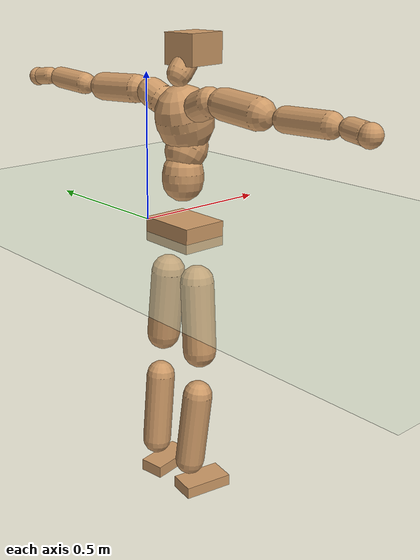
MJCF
<mujoco model="humanoid">
  <compiler coordinate="local" angle="radian"/>
  <default>
    <joint damping="0.0" armature="0.01" stiffness="0.0" limited="true"/>
    <geom conaffinity="1" condim="3" contype="7" margin="0.001" rgba="0.8 0.6 .4 1"/>
  </default>
  <asset>
    <texture type="skybox" builtin="gradient" rgb1=".4 .5 .6" rgb2="0 0 0" width="100" height="100"/>
    <texture builtin="flat" height="1278" mark="cross" markrgb="1 1 1" name="texgeom" random="0.01" rgb1="0.8 0.6 0.4" rgb2="0.8 0.6 0.4" type="cube" width="127"/>
    <texture builtin="checker" height="100" name="texplane" rgb1="0 0 0" rgb2="0.8 0.8 0.8" type="2d" width="100"/>
    <material name="MatPlane" reflectance="0.5" shininess="1" specular="1" texrepeat="60 60" texture="texplane"/>
    <material name="geom" texture="texgeom" texuniform="true"/>
  </asset>
  <worldbody>
    <light cutoff="100" diffuse="1 1 1" dir="-0 0 -1.3" directional="true" exponent="1" pos="0 0 1.3" specular=".1 .1 .1"/>
    <geom conaffinity="1" condim="3" name="floor" pos="0 0 0" rgba="0.8 0.9 0.8 1" size="100 100 .2" type="plane" material="MatPlane"/>
    <body name="Pelvis" pos="-0.0011 -0.2003 0.0205">
      <freejoint name="Pelvis"/>
      <geom type="box" contype="1" conaffinity="1" density="500" pos="-0.0063 0.0000 -0.0132" size="0.0785 0.0994 0.0409" quat="1.0000 0.0000 0.0000 -0.0017" name="Pelvis"/>
      <body name="L_Hip" pos="-0.0132 0.0644 -0.0924">
        <joint name="L_Hip_x" type="hinge" pos="0 0 0" axis="1 0 0" stiffness="800" damping="80" armature="0.02" range="-180.0000 180.0000"/>
        <joint name="L_Hip_y" type="hinge" pos="0 0 0" axis="0 1 0" stiffness="800" damping="80" armature="0.02" range="-180.0000 180.0000"/>
        <joint name="L_Hip_z" type="hinge" pos="0 0 0" axis="0 0 1" stiffness="800" damping="80" armature="0.02" range="-180.0000 180.0000"/>
        <geom type="capsule" contype="1" conaffinity="1" density="500" fromto="-0.0017 0.0068 -0.0782 -0.0066 0.0272 -0.3129" size="0.057" name="L_Hip"/>
        <body name="L_Knee" pos="-0.0083 0.034 -0.3911">
          <joint name="L_Knee_x" type="hinge" pos="0 0 0" axis="1 0 0" stiffness="800" damping="80" armature="0.02" range="-180.0000 180.0000"/>
          <joint name="L_Knee_y" type="hinge" pos="0 0 0" axis="0 1 0" stiffness="800" damping="80" armature="0.02" range="-180.0000 180.0000"/>
          <joint name="L_Knee_z" type="hinge" pos="0 0 0" axis="0 0 1" stiffness="800" damping="80" armature="0.02" range="-180.0000 180.0000"/>
          <geom type="capsule" contype="1" conaffinity="1" density="500" fromto="-0.0086 -0.0026 -0.0830 -0.0342 -0.0103 -0.3319" size="0.0499" name="L_Knee"/>
          <body name="L_Ankle" pos="-0.0428 -0.0128 -0.4149">
            <joint name="L_Ankle_x" type="hinge" pos="0 0 0" axis="1 0 0" stiffness="800" damping="80" armature="0.02" range="-180.0000 180.0000"/>
            <joint name="L_Ankle_y" type="hinge" pos="0 0 0" axis="0 1 0" stiffness="800" damping="80" armature="0.02" range="-180.0000 180.0000"/>
            <joint name="L_Ankle_z" type="hinge" pos="0 0 0" axis="0 0 1" stiffness="800" damping="80" armature="0.02" range="-180.0000 180.0000"/>
            <geom type="box" contype="1" conaffinity="1" density="500" pos="0.0589 0.0093 -0.0285" size="0.0842 0.0431 0.021" quat="0.9969 0.0000 0.0000 0.0785" name="L_Ankle"/>
            <body name="L_Toe" pos="0.1179 0.0187 -0.0569">
              <joint name="L_Toe_x" type="hinge" pos="0 0 0" axis="1 0 0" stiffness="500" damping="50" armature="0.02" range="-180.0000 180.0000"/>
              <joint name="L_Toe_y" type="hinge" pos="0 0 0" axis="0 1 0" stiffness="500" damping="50" armature="0.02" range="-180.0000 180.0000"/>
              <joint name="L_Toe_z" type="hinge" pos="0 0 0" axis="0 0 1" stiffness="500" damping="50" armature="0.02" range="-180.0000 180.0000"/>
              <geom type="box" contype="1" conaffinity="1" density="500" pos="0.0000 0.0000 0.0270" size="0.0009 0.0022 0.001" quat="0.9964 0.0000 0.0000 0.0853" name="L_Toe"/>
            </body>
          </body>
        </body>
      </body>
      <body name="R_Hip" pos="-0.0088 -0.0619 -0.0924">
        <joint name="R_Hip_x" type="hinge" pos="0 0 0" axis="1 0 0" stiffness="800" damping="80" armature="0.02" range="-180.0000 180.0000"/>
        <joint name="R_Hip_y" type="hinge" pos="0 0 0" axis="0 1 0" stiffness="800" damping="80" armature="0.02" range="-180.0000 180.0000"/>
        <joint name="R_Hip_z" type="hinge" pos="0 0 0" axis="0 0 1" stiffness="800" damping="80" armature="0.02" range="-180.0000 180.0000"/>
        <geom type="capsule" contype="1" conaffinity="1" density="500" fromto="-0.0022 -0.0078 -0.0791 -0.0086 -0.0312 -0.3166" size="0.0562" name="R_Hip"/>
        <body name="R_Knee" pos="-0.0108 -0.0391 -0.3957">
          <joint name="R_Knee_x" type="hinge" pos="0 0 0" axis="1 0 0" stiffness="800" damping="80" armature="0.02" range="-180.0000 180.0000"/>
          <joint name="R_Knee_y" type="hinge" pos="0 0 0" axis="0 1 0" stiffness="800" damping="80" armature="0.02" range="-180.0000 180.0000"/>
          <joint name="R_Knee_z" type="hinge" pos="0 0 0" axis="0 0 1" stiffness="800" damping="80" armature="0.02" range="-180.0000 180.0000"/>
          <geom type="capsule" contype="1" conaffinity="1" density="500" fromto="-0.0081 0.0032 -0.0828 -0.0325 0.0129 -0.3311" size="0.0501" name="R_Knee"/>
          <body name="R_Ankle" pos="-0.0406 0.0161 -0.4138">
            <joint name="R_Ankle_x" type="hinge" pos="0 0 0" axis="1 0 0" stiffness="800" damping="80" armature="0.02" range="-180.0000 180.0000"/>
            <joint name="R_Ankle_y" type="hinge" pos="0 0 0" axis="0 1 0" stiffness="800" damping="80" armature="0.02" range="-180.0000 180.0000"/>
            <joint name="R_Ankle_z" type="hinge" pos="0 0 0" axis="0 0 1" stiffness="800" damping="80" armature="0.02" range="-180.0000 180.0000"/>
            <geom type="box" contype="1" conaffinity="1" density="500" pos="0.0605 -0.0104 -0.0240" size="0.0862 0.0454 0.0203" quat="0.9963 0.0000 0.0000 -0.0854" name="R_Ankle"/>
            <body name="R_Toe" pos="0.1209 -0.0209 -0.048">
              <joint name="R_Toe_x" type="hinge" pos="0 0 0" axis="1 0 0" stiffness="500" damping="50" armature="0.02" range="-180.0000 180.0000"/>
              <joint name="R_Toe_y" type="hinge" pos="0 0 0" axis="0 1 0" stiffness="500" damping="50" armature="0.02" range="-180.0000 180.0000"/>
              <joint name="R_Toe_z" type="hinge" pos="0 0 0" axis="0 0 1" stiffness="500" damping="50" armature="0.02" range="-180.0000 180.0000"/>
              <geom type="box" contype="1" conaffinity="1" density="500" pos="0.0000 0.0000 0.0255" size="0.0009 0.0023 0.0011" quat="0.9971 0.0000 0.0000 -0.0762" name="R_Toe"/>
            </body>
          </body>
        </body>
      </body>
      <body name="Torso" pos="-0.016 -0.0023 0.1056">
        <joint name="Torso_x" type="hinge" pos="0 0 0" axis="1 0 0" stiffness="1000" damping="100" armature="0.02" range="-180.0000 180.0000"/>
        <joint name="Torso_y" type="hinge" pos="0 0 0" axis="0 1 0" stiffness="1000" damping="100" armature="0.02" range="-180.0000 180.0000"/>
        <joint name="Torso_z" type="hinge" pos="0 0 0" axis="0 0 1" stiffness="1000" damping="100" armature="0.02" range="-180.0000 180.0000"/>
        <geom type="capsule" contype="1" conaffinity="1" density="500" fromto="0.0021 0.0018 0.0768 0.0014 0.0012 0.0512" size="0.0674" name="Torso"/>
        <body name="Spine" pos="0.0036 0.0029 0.128">
          <joint name="Spine_x" type="hinge" pos="0 0 0" axis="1 0 0" stiffness="1000" damping="100" armature="0.02" range="-180.0000 180.0000"/>
          <joint name="Spine_y" type="hinge" pos="0 0 0" axis="0 1 0" stiffness="1000" damping="100" armature="0.02" range="-180.0000 180.0000"/>
          <joint name="Spine_z" type="hinge" pos="0 0 0" axis="0 0 1" stiffness="1000" damping="100" armature="0.02" range="-180.0000 180.0000"/>
          <geom type="capsule" contype="1" conaffinity="1" density="500" fromto="0.0178 0.0020 0.0287 0.0118 0.0013 0.0191" size="0.0688" name="Spine"/>
          <body name="Chest" pos="0.0296 0.0033 0.0479">
            <joint name="Chest_x" type="hinge" pos="0 0 0" axis="1 0 0" stiffness="1000" damping="100" armature="0.02" range="-180.0000 180.0000"/>
            <joint name="Chest_y" type="hinge" pos="0 0 0" axis="0 1 0" stiffness="1000" damping="100" armature="0.02" range="-180.0000 180.0000"/>
            <joint name="Chest_z" type="hinge" pos="0 0 0" axis="0 0 1" stiffness="1000" damping="100" armature="0.02" range="-180.0000 180.0000"/>
            <geom type="capsule" contype="1" conaffinity="1" density="500" fromto="-0.0270 -0.0004 0.0861 -0.0180 -0.0003 0.0574" size="0.0922" name="Chest"/>
            <body name="Neck" pos="-0.0533 -0.0007 0.2">
              <joint name="Neck_x" type="hinge" pos="0 0 0" axis="1 0 0" stiffness="500" damping="50" armature="0.02" range="-180.0000 180.0000"/>
              <joint name="Neck_y" type="hinge" pos="0 0 0" axis="0 1 0" stiffness="500" damping="50" armature="0.02" range="-180.0000 180.0000"/>
              <joint name="Neck_z" type="hinge" pos="0 0 0" axis="0 0 1" stiffness="500" damping="50" armature="0.02" range="-180.0000 180.0000"/>
              <geom type="capsule" contype="1" conaffinity="1" density="500" fromto="0.0094 0.0008 0.0109 0.0378 0.0032 0.0437" size="0.0397" name="Neck"/>
              <body name="Head" pos="0.0472 0.004 0.0546">
                <joint name="Head_x" type="hinge" pos="0 0 0" axis="1 0 0" stiffness="500" damping="50" armature="0.02" range="-180.0000 180.0000"/>
                <joint name="Head_y" type="hinge" pos="0 0 0" axis="0 1 0" stiffness="500" damping="50" armature="0.02" range="-180.0000 180.0000"/>
                <joint name="Head_z" type="hinge" pos="0 0 0" axis="0 0 1" stiffness="500" damping="50" armature="0.02" range="-180.0000 180.0000"/>
                <geom type="box" contype="1" conaffinity="1" density="500" pos="0.0246 0.0030 0.0283" size="0.0711 0.0564 0.0489" quat="0.9982 0.0000 0.0000 0.0606" name="Head"/>
              </body>
            </body>
            <body name="L_Thorax" pos="-0.0391 0.0724 0.1162">
              <joint name="L_Thorax_x" type="hinge" pos="0 0 0" axis="1 0 0" stiffness="500" damping="50" armature="0.02" range="-180.0000 180.0000"/>
              <joint name="L_Thorax_y" type="hinge" pos="0 0 0" axis="0 1 0" stiffness="500" damping="50" armature="0.02" range="-180.0000 180.0000"/>
              <joint name="L_Thorax_z" type="hinge" pos="0 0 0" axis="0 0 1" stiffness="500" damping="50" armature="0.02" range="-180.0000 180.0000"/>
              <geom type="capsule" contype="1" conaffinity="1" density="500" fromto="-0.0012 0.0156 0.0062 -0.0046 0.0624 0.0247" size="0.0473" name="L_Thorax"/>
              <body name="L_Shoulder" pos="-0.0058 0.078 0.0309">
                <joint name="L_Shoulder_x" type="hinge" pos="0 0 0" axis="1 0 0" stiffness="500" damping="50" armature="0.02" range="-720.0000 720.0000"/>
                <joint name="L_Shoulder_y" type="hinge" pos="0 0 0" axis="0 1 0" stiffness="500" damping="50" armature="0.02" range="-720.0000 720.0000"/>
                <joint name="L_Shoulder_z" type="hinge" pos="0 0 0" axis="0 0 1" stiffness="500" damping="50" armature="0.02" range="-720.0000 720.0000"/>
                <geom type="capsule" contype="1" conaffinity="1" density="500" fromto="-0.0056 0.0524 -0.0023 -0.0223 0.2095 -0.0093" size="0.0463" name="L_Shoulder"/>
                <body name="L_Elbow" pos="-0.0279 0.2619 -0.0116">
                  <joint name="L_Elbow_x" type="hinge" pos="0 0 0" axis="1 0 0" stiffness="500" damping="50" armature="0.02" range="-720.0000 720.0000"/>
                  <joint name="L_Elbow_y" type="hinge" pos="0 0 0" axis="0 1 0" stiffness="500" damping="50" armature="0.02" range="-720.0000 720.0000"/>
                  <joint name="L_Elbow_z" type="hinge" pos="0 0 0" axis="0 0 1" stiffness="500" damping="50" armature="0.02" range="-720.0000 720.0000"/>
                  <geom type="capsule" contype="1" conaffinity="1" density="500" fromto="-0.0004 0.0494 0.0021 -0.0015 0.1977 0.0086" size="0.0366" name="L_Elbow"/>
                  <body name="L_Wrist" pos="-0.0018 0.2471 0.0107">
                    <joint name="L_Wrist_x" type="hinge" pos="0 0 0" axis="1 0 0" stiffness="300" damping="30" armature="0.02" range="-180.0000 180.0000"/>
                    <joint name="L_Wrist_y" type="hinge" pos="0 0 0" axis="0 1 0" stiffness="300" damping="30" armature="0.02" range="-180.0000 180.0000"/>
                    <joint name="L_Wrist_z" type="hinge" pos="0 0 0" axis="0 0 1" stiffness="300" damping="30" armature="0.02" range="-180.0000 180.0000"/>
                    <geom type="capsule" contype="1" conaffinity="1" density="500" fromto="-0.0028 0.0161 -0.0019 -0.0110 0.0645 -0.0077" size="0.03" name="L_Wrist"/>
                    <body name="L_Hand" pos="-0.0138 0.0806 -0.0097">
                      <joint name="L_Hand_x" type="hinge" pos="0 0 0" axis="1 0 0" stiffness="300" damping="30" armature="0.02" range="-180.0000 180.0000"/>
                      <joint name="L_Hand_y" type="hinge" pos="0 0 0" axis="0 1 0" stiffness="300" damping="30" armature="0.02" range="-180.0000 180.0000"/>
                      <joint name="L_Hand_z" type="hinge" pos="0 0 0" axis="0 0 1" stiffness="300" damping="30" armature="0.02" range="-180.0000 180.0000"/>
                      <geom type="sphere" contype="1" conaffinity="1" density="500" size="0.0324" pos="0.0000 0.0000 0.0000" name="L_Hand"/>
                    </body>
                  </body>
                </body>
              </body>
            </body>
            <body name="R_Thorax" pos="-0.0425 -0.0737 0.1145">
              <joint name="R_Thorax_x" type="hinge" pos="0 0 0" axis="1 0 0" stiffness="500" damping="50" armature="0.02" range="-180.0000 180.0000"/>
              <joint name="R_Thorax_y" type="hinge" pos="0 0 0" axis="0 1 0" stiffness="500" damping="50" armature="0.02" range="-180.0000 180.0000"/>
              <joint name="R_Thorax_z" type="hinge" pos="0 0 0" axis="0 0 1" stiffness="500" damping="50" armature="0.02" range="-180.0000 180.0000"/>
              <geom type="capsule" contype="1" conaffinity="1" density="500" fromto="-0.0015 -0.0167 0.0064 -0.0060 -0.0669 0.0257" size="0.0471" name="R_Thorax"/>
              <body name="R_Shoulder" pos="-0.0075 -0.0836 0.0321">
                <joint name="R_Shoulder_x" type="hinge" pos="0 0 0" axis="1 0 0" stiffness="500" damping="50" armature="0.02" range="-720.0000 720.0000"/>
                <joint name="R_Shoulder_y" type="hinge" pos="0 0 0" axis="0 1 0" stiffness="500" damping="50" armature="0.02" range="-720.0000 720.0000"/>
                <joint name="R_Shoulder_z" type="hinge" pos="0 0 0" axis="0 0 1" stiffness="500" damping="50" armature="0.02" range="-720.0000 720.0000"/>
                <geom type="capsule" contype="1" conaffinity="1" density="500" fromto="-0.0035 -0.0511 -0.0028 -0.0141 -0.2044 -0.0111" size="0.0485" name="R_Shoulder"/>
                <body name="R_Elbow" pos="-0.0176 -0.2555 -0.0139">
                  <joint name="R_Elbow_x" type="hinge" pos="0 0 0" axis="1 0 0" stiffness="500" damping="50" armature="0.02" range="-720.0000 720.0000"/>
                  <joint name="R_Elbow_y" type="hinge" pos="0 0 0" axis="0 1 0" stiffness="500" damping="50" armature="0.02" range="-720.0000 720.0000"/>
                  <joint name="R_Elbow_z" type="hinge" pos="0 0 0" axis="0 0 1" stiffness="500" damping="50" armature="0.02" range="-720.0000 720.0000"/>
                  <geom type="capsule" contype="1" conaffinity="1" density="500" fromto="-0.0012 -0.0517 0.0021 -0.0048 -0.2070 0.0084" size="0.0372" name="R_Elbow"/>
                  <body name="R_Wrist" pos="-0.006 -0.2587 0.0105">
                    <joint name="R_Wrist_x" type="hinge" pos="0 0 0" axis="1 0 0" stiffness="300" damping="30" armature="0.02" range="-180.0000 180.0000"/>
                    <joint name="R_Wrist_y" type="hinge" pos="0 0 0" axis="0 1 0" stiffness="300" damping="30" armature="0.02" range="-180.0000 180.0000"/>
                    <joint name="R_Wrist_z" type="hinge" pos="0 0 0" axis="0 0 1" stiffness="300" damping="30" armature="0.02" range="-180.0000 180.0000"/>
                    <geom type="capsule" contype="1" conaffinity="1" density="500" fromto="-0.0022 -0.0165 -0.0015 -0.0087 -0.0661 -0.0058" size="0.0312" name="R_Wrist"/>
                    <body name="R_Hand" pos="-0.0109 -0.0827 -0.0073">
                      <joint name="R_Hand_x" type="hinge" pos="0 0 0" axis="1 0 0" stiffness="300" damping="30" armature="0.02" range="-180.0000 180.0000"/>
                      <joint name="R_Hand_y" type="hinge" pos="0 0 0" axis="0 1 0" stiffness="300" damping="30" armature="0.02" range="-180.0000 180.0000"/>
                      <joint name="R_Hand_z" type="hinge" pos="0 0 0" axis="0 0 1" stiffness="300" damping="30" armature="0.02" range="-180.0000 180.0000"/>
                      <geom type="sphere" contype="1" conaffinity="1" density="500" size="0.0331" pos="0.0000 0.0000 0.0000" name="R_Hand"/>
                    </body>
                  </body>
                </body>
              </body>
            </body>
          </body>
        </body>
      </body>
    </body>
  </worldbody>
  <actuator>
    <motor name="L_Hip_x" joint="L_Hip_x" gear="500"/>
    <motor name="L_Hip_y" joint="L_Hip_y" gear="500"/>
    <motor name="L_Hip_z" joint="L_Hip_z" gear="500"/>
    <motor name="L_Knee_x" joint="L_Knee_x" gear="500"/>
    <motor name="L_Knee_y" joint="L_Knee_y" gear="500"/>
    <motor name="L_Knee_z" joint="L_Knee_z" gear="500"/>
    <motor name="L_Ankle_x" joint="L_Ankle_x" gear="500"/>
    <motor name="L_Ankle_y" joint="L_Ankle_y" gear="500"/>
    <motor name="L_Ankle_z" joint="L_Ankle_z" gear="500"/>
    <motor name="L_Toe_x" joint="L_Toe_x" gear="500"/>
    <motor name="L_Toe_y" joint="L_Toe_y" gear="500"/>
    <motor name="L_Toe_z" joint="L_Toe_z" gear="500"/>
    <motor name="R_Hip_x" joint="R_Hip_x" gear="500"/>
    <motor name="R_Hip_y" joint="R_Hip_y" gear="500"/>
    <motor name="R_Hip_z" joint="R_Hip_z" gear="500"/>
    <motor name="R_Knee_x" joint="R_Knee_x" gear="500"/>
    <motor name="R_Knee_y" joint="R_Knee_y" gear="500"/>
    <motor name="R_Knee_z" joint="R_Knee_z" gear="500"/>
    <motor name="R_Ankle_x" joint="R_Ankle_x" gear="500"/>
    <motor name="R_Ankle_y" joint="R_Ankle_y" gear="500"/>
    <motor name="R_Ankle_z" joint="R_Ankle_z" gear="500"/>
    <motor name="R_Toe_x" joint="R_Toe_x" gear="500"/>
    <motor name="R_Toe_y" joint="R_Toe_y" gear="500"/>
    <motor name="R_Toe_z" joint="R_Toe_z" gear="500"/>
    <motor name="Torso_x" joint="Torso_x" gear="500"/>
    <motor name="Torso_y" joint="Torso_y" gear="500"/>
    <motor name="Torso_z" joint="Torso_z" gear="500"/>
    <motor name="Spine_x" joint="Spine_x" gear="500"/>
    <motor name="Spine_y" joint="Spine_y" gear="500"/>
    <motor name="Spine_z" joint="Spine_z" gear="500"/>
    <motor name="Chest_x" joint="Chest_x" gear="500"/>
    <motor name="Chest_y" joint="Chest_y" gear="500"/>
    <motor name="Chest_z" joint="Chest_z" gear="500"/>
    <motor name="Neck_x" joint="Neck_x" gear="500"/>
    <motor name="Neck_y" joint="Neck_y" gear="500"/>
    <motor name="Neck_z" joint="Neck_z" gear="500"/>
    <motor name="Head_x" joint="Head_x" gear="500"/>
    <motor name="Head_y" joint="Head_y" gear="500"/>
    <motor name="Head_z" joint="Head_z" gear="500"/>
    <motor name="L_Thorax_x" joint="L_Thorax_x" gear="500"/>
    <motor name="L_Thorax_y" joint="L_Thorax_y" gear="500"/>
    <motor name="L_Thorax_z" joint="L_Thorax_z" gear="500"/>
    <motor name="L_Shoulder_x" joint="L_Shoulder_x" gear="500"/>
    <motor name="L_Shoulder_y" joint="L_Shoulder_y" gear="500"/>
    <motor name="L_Shoulder_z" joint="L_Shoulder_z" gear="500"/>
    <motor name="L_Elbow_x" joint="L_Elbow_x" gear="500"/>
    <motor name="L_Elbow_y" joint="L_Elbow_y" gear="500"/>
    <motor name="L_Elbow_z" joint="L_Elbow_z" gear="500"/>
    <motor name="L_Wrist_x" joint="L_Wrist_x" gear="500"/>
    <motor name="L_Wrist_y" joint="L_Wrist_y" gear="500"/>
    <motor name="L_Wrist_z" joint="L_Wrist_z" gear="500"/>
    <motor name="L_Hand_x" joint="L_Hand_x" gear="500"/>
    <motor name="L_Hand_y" joint="L_Hand_y" gear="500"/>
    <motor name="L_Hand_z" joint="L_Hand_z" gear="500"/>
    <motor name="R_Thorax_x" joint="R_Thorax_x" gear="500"/>
    <motor name="R_Thorax_y" joint="R_Thorax_y" gear="500"/>
    <motor name="R_Thorax_z" joint="R_Thorax_z" gear="500"/>
    <motor name="R_Shoulder_x" joint="R_Shoulder_x" gear="500"/>
    <motor name="R_Shoulder_y" joint="R_Shoulder_y" gear="500"/>
    <motor name="R_Shoulder_z" joint="R_Shoulder_z" gear="500"/>
    <motor name="R_Elbow_x" joint="R_Elbow_x" gear="500"/>
    <motor name="R_Elbow_y" joint="R_Elbow_y" gear="500"/>
    <motor name="R_Elbow_z" joint="R_Elbow_z" gear="500"/>
    <motor name="R_Wrist_x" joint="R_Wrist_x" gear="500"/>
    <motor name="R_Wrist_y" joint="R_Wrist_y" gear="500"/>
    <motor name="R_Wrist_z" joint="R_Wrist_z" gear="500"/>
    <motor name="R_Hand_x" joint="R_Hand_x" gear="500"/>
    <motor name="R_Hand_y" joint="R_Hand_y" gear="500"/>
    <motor name="R_Hand_z" joint="R_Hand_z" gear="500"/>
  </actuator>
  <contact>
    <exclude body1="Torso" body2="Chest"/>
    <exclude body1="Head" body2="Chest"/>
    <exclude body1="R_Knee" body2="R_Toe"/>
    <exclude body1="R_Knee" body2="L_Ankle"/>
    <exclude body1="R_Knee" body2="L_Toe"/>
    <exclude body1="L_Knee" body2="L_Toe"/>
    <exclude body1="L_Knee" body2="R_Ankle"/>
    <exclude body1="L_Knee" body2="R_Toe"/>
    <exclude body1="L_Shoulder" body2="Chest"/>
    <exclude body1="R_Shoulder" body2="Chest"/>
  </contact>
  <sensor/>
  <size njmax="700" nconmax="700"/>
</mujoco>
